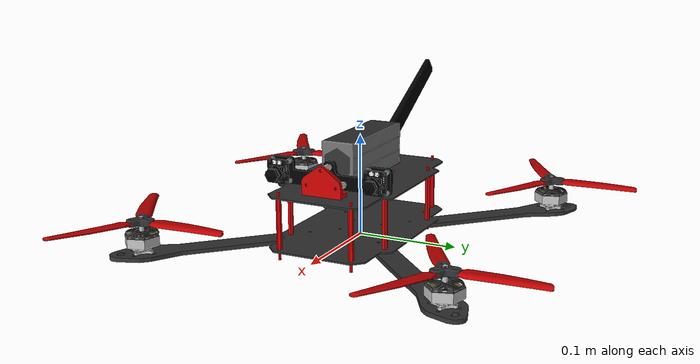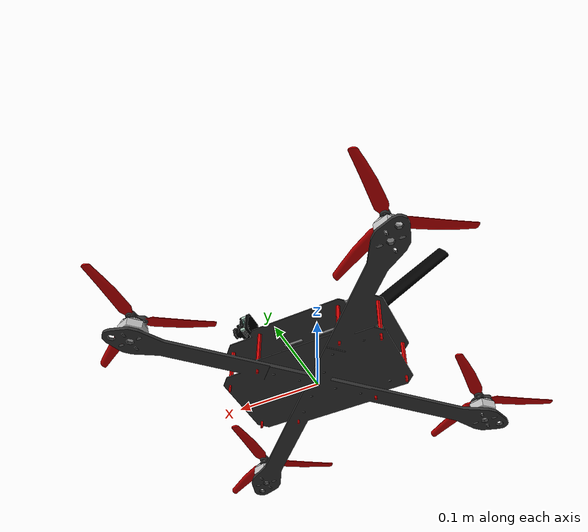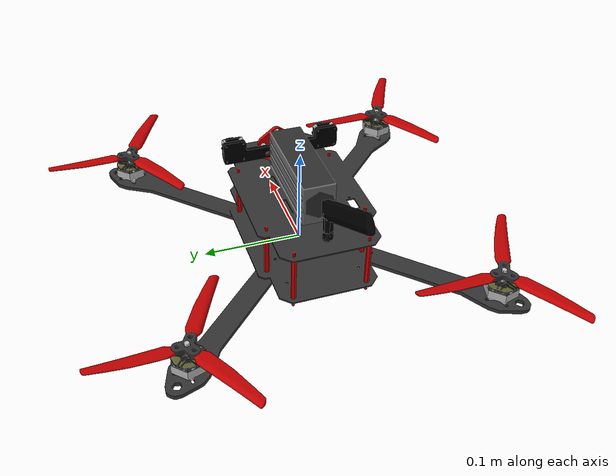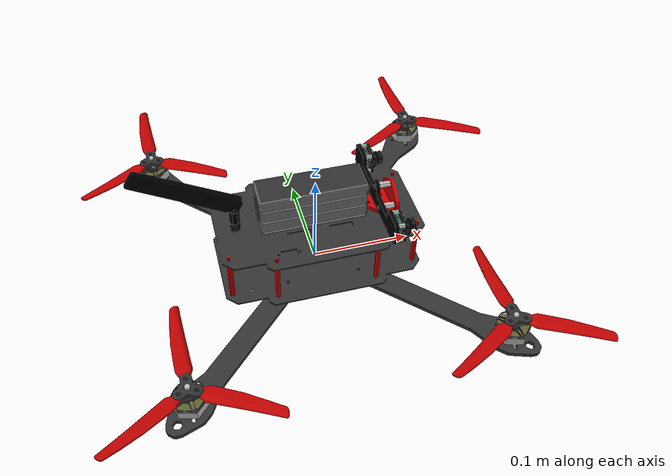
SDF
<?xml version='1.0'?>
<sdf version='1.6'>
  <model name='fei_lrs_drone'>
    <link name='drone_body'>
      <inertial>
        <mass>1.165</mass>
        <inertia>
          <ixx>0.008</ixx>
          <ixy>0</ixy>
          <ixz>0</ixz>
          <iyy>0.015</iyy>
          <iyz>0</iyz>
          <izz>0.017</izz>
        </inertia>
        <pose frame=''>0 0 0 0 -0 0</pose>
      </inertial>
      <pose frame=''>0 0 0 0 -0 0</pose>
      <self_collide>0</self_collide>
      <enable_wind>0</enable_wind>
      <kinematic>0</kinematic>
      <gravity>1</gravity>
      <visual name='visual'>
        <pose frame=''>0 0 0 0 -0 1.5708</pose>
        <geometry>
          <mesh>
            <uri>model://fei_lrs_drone/drone_lowres.dae</uri>
            <scale>1 1 1</scale>
          </mesh>
        </geometry>
        <transparency>0</transparency>
        <cast_shadows>1</cast_shadows>
        <material>
          <shader type='pixel'>
            <normal_map>__default__</normal_map>
          </shader>
          <emissive>0 0 0 1</emissive>
        </material>
      </visual>
      <collision name='collision'>
        <laser_retro>0</laser_retro>
        <max_contacts>10</max_contacts>
        <pose frame=''>0 0 0 0 -0 1.5708</pose>
        <geometry>
          <mesh>
            <uri>model://fei_lrs_drone/drone_lowres.dae</uri>
            <scale>1 1 1</scale>
          </mesh>
        </geometry>
        <surface>
          <friction>
            <ode>
              <mu>1000</mu>
              <mu2>1000</mu2>
              <fdir1>0 0 0</fdir1>
              <slip1>0</slip1>
              <slip2>0</slip2>
            </ode>
            <torsional>
              <coefficient>1</coefficient>
              <patch_radius>0</patch_radius>
              <surface_radius>0</surface_radius>
              <use_patch_radius>1</use_patch_radius>
              <ode>
                <slip>0</slip>
              </ode>
            </torsional>
          </friction>
          <bounce>
            <restitution_coefficient>0</restitution_coefficient>
            <threshold>1e+06</threshold>
          </bounce>
          <contact>
            <collide_without_contact>0</collide_without_contact>
            <collide_without_contact_bitmask>1</collide_without_contact_bitmask>
            <collide_bitmask>1</collide_bitmask>
            <ode>
              <soft_cfm>0</soft_cfm>
              <soft_erp>0.2</soft_erp>
              <kp>1e+13</kp>
              <kd>1</kd>
              <max_vel>100.0</max_vel>
              <min_depth>0.001</min_depth>
            </ode>
            <bullet>
              <split_impulse>1</split_impulse>
              <split_impulse_penetration_threshold>-0.01</split_impulse_penetration_threshold>
              <soft_cfm>0</soft_cfm>
              <soft_erp>0.2</soft_erp>
              <kp>1e+13</kp>
              <kd>1</kd>
            </bullet>
          </contact>
        </surface>
      </collision>
    </link>
    <link name='fei_lrs_drone/ground_truth/odometry_sensorgt_link'>
      <pose>0 0 0 0 -0 0</pose>
      <inertial>
        <pose>0 0 0 0 -0 0</pose>
        <mass>0.01</mass>
        <inertia>
          <ixx>0.0001</ixx>
          <ixy>0</ixy>
          <ixz>0</ixz>
          <iyy>0.0002</iyy>
          <iyz>0</iyz>
          <izz>0.0002</izz>
        </inertia>
      </inertial>
    </link>
    <joint name='fei_lrs_drone/ground_truth/odometry_sensorgt_joint' type='revolute'>
      <child>fei_lrs_drone/ground_truth/odometry_sensorgt_link</child>
      <parent>drone_body</parent>
      <axis>
        <xyz>0 0 1</xyz>
        <limit>
          <lower>0</lower>
          <upper>0</upper>
          <effort>0</effort>
          <velocity>0</velocity>
        </limit>
        <dynamics>
          <damping>1.0</damping>
        </dynamics>
        <use_parent_model_frame>1</use_parent_model_frame>
      </axis>
      <physics>
        <ode>
          <implicit_spring_damper>1</implicit_spring_damper>
        </ode>
      </physics>
    </joint>
    <link name='fei_lrs_drone/imu_link'>
      <inertial>
        <pose>0 0 0 0 0 0</pose>
        <mass>0.01</mass>
        <inertia>
          <ixx>0.00001</ixx>
          <ixy>0</ixy>
          <ixz>0</ixz>
          <iyy>0.00002</iyy>
          <iyz>0</iyz>
          <izz>0.00002</izz>
        </inertia>
      </inertial>
      <sensor name="imu_sensor" type="imu">
        <pose>0 0 0 3.141593 0 0</pose>
        <always_on>1</always_on>
        <update_rate>1000.0</update_rate>
      </sensor>
    </link>
    <joint name='fei_lrs_drone/imu_joint' type='revolute'>
      <child>fei_lrs_drone/imu_link</child>
      <parent>drone_body</parent>
      <axis>
        <xyz>0 0 1</xyz>
        <limit>
          <lower>0</lower>
          <upper>0</upper>
          <effort>0</effort>
          <velocity>0</velocity>
        </limit>
        <dynamics>
          <damping>1.0</damping>
        </dynamics>
        <use_parent_model_frame>1</use_parent_model_frame>
      </axis>
      <physics>
        <ode>
          <implicit_spring_damper>1</implicit_spring_damper>
        </ode>
      </physics>
    </joint>
    <link name='fei_lrs_drone/stereo_cam_link'>
      <gravity>0</gravity>
      <pose>0.085 0.05 0.0735 0 0 0</pose>
      <inertial>
        <pose>0 0 0 0 0 0</pose>
        <mass>0.01</mass>
        <inertia>
          <ixx>0.00001</ixx>
          <ixy>0</ixy>
          <ixz>0</ixz>
          <iyy>0.00002</iyy>
          <iyz>0</iyz>
          <izz>0.00002</izz>
        </inertia>
      </inertial>
      <sensor type="multicamera" name="stereo_camera">
        <update_rate>30.0</update_rate>
        <camera name="left">
          <horizontal_fov>1.3962634</horizontal_fov>
          <image>
            <width>800</width>
            <height>800</height>
            <format>R8G8B8</format>
          </image>
          <clip>
            <near>0.02</near>
            <far>300</far>
          </clip>
          <noise>
            <type>gaussian</type>
            <mean>0.0</mean>
            <stddev>0.007</stddev>
          </noise>
        </camera>
        <camera name="right">
          <pose>0 -0.1 0 0 0 0</pose>
          <horizontal_fov>1.3962634</horizontal_fov>
          <image>
            <width>800</width>
            <height>800</height>
            <format>R8G8B8</format>
          </image>
          <clip>
            <near>0.02</near>
            <far>300</far>
          </clip>
          <noise>
            <type>gaussian</type>
            <mean>0.0</mean>
            <stddev>0.007</stddev>
          </noise>
        </camera>
        <plugin name="stereo_camera_controller" filename="libgazebo_ros_multicamera.so">
          <alwaysOn>true</alwaysOn>
          <updateRate>0.0</updateRate>
          <cameraName>fei_lrs_drone/stereo_camera</cameraName>
          <imageTopicName>image_raw</imageTopicName>
          <cameraInfoTopicName>camera_info</cameraInfoTopicName>
          <frameName>left_camera_optical_frame</frameName>
          <hackBaseline>0.07</hackBaseline>
          <distortionK1>0.0</distortionK1>
          <distortionK2>0.0</distortionK2>
          <distortionK3>0.0</distortionK3>
          <distortionT1>0.0</distortionT1>
          <distortionT2>0.0</distortionT2>
        </plugin>
      </sensor>
    </link>
    <joint name='JOINT_stereo_cam' type='fixed'>
      <parent>drone_body</parent>
      <child>fei_lrs_drone/stereo_cam_link</child>
    </joint>
    <link name='prop_0'>
      <inertial>
        <mass>0.008</mass>
        <inertia>
          <ixx>9.75e-06</ixx>
          <ixy>0</ixy>
          <ixz>0</ixz>
          <iyy>0.000166704</iyy>
          <iyz>0</iyz>
          <izz>0.000167604</izz>
        </inertia>
      </inertial>
      <pose frame=''>0.149345 -0.149071 0.035 0 -0 0</pose>
      <visual name='visual'>
        <pose frame=''>0 0 0 0 -0 0</pose>
        <geometry>
          <mesh>
            <uri>model://fei_lrs_drone/propeller.dae</uri>
            <scale>1 1 1</scale>
          </mesh>
        </geometry>
        <transparency>0</transparency>
        <cast_shadows>1</cast_shadows>
        <material>
          <shader type='pixel'>
            <normal_map>__default__</normal_map>
          </shader>
          <emissive>0 0 0 1</emissive>
        </material>
      </visual>
    </link>
    <link name='prop_1'>
      <inertial>
        <mass>0.008</mass>
        <inertia>
          <ixx>9.75e-06</ixx>
          <ixy>0</ixy>
          <ixz>0</ixz>
          <iyy>0.000166704</iyy>
          <iyz>0</iyz>
          <izz>0.000167604</izz>
        </inertia>
      </inertial>
      <pose frame=''>-0.149345 0.149071 0.035 0 -0 0</pose>
      <visual name='visual'>
        <pose frame=''>0 0 0 0 -0 0</pose>
        <geometry>
          <mesh>
            <uri>model://fei_lrs_drone/propeller.dae</uri>
            <scale>1 1 1</scale>
          </mesh>
        </geometry>
        <transparency>0</transparency>
        <cast_shadows>1</cast_shadows>
        <material>
          <shader type='pixel'>
            <normal_map>__default__</normal_map>
          </shader>
          <emissive>0 0 0 1</emissive>
        </material>
      </visual>
    </link>
    <link name='prop_2'>
      <inertial>
        <mass>0.008</mass>
        <inertia>
          <ixx>9.75e-06</ixx>
          <ixy>0</ixy>
          <ixz>0</ixz>
          <iyy>0.000166704</iyy>
          <iyz>0</iyz>
          <izz>0.000167604</izz>
        </inertia>
      </inertial>
      <pose frame=''>0.149345 0.149071 0.035 0 -0 0</pose>
      <visual name='visual'>
        <pose frame=''>0 0 0 0 -0 0</pose>
        <geometry>
          <mesh>
            <uri>model://fei_lrs_drone/propeller.dae</uri>
            <scale>1 1 1</scale>
          </mesh>
        </geometry>
        <transparency>0</transparency>
        <cast_shadows>1</cast_shadows>
        <material>
          <shader type='pixel'>
            <normal_map>__default__</normal_map>
          </shader>
          <emissive>0 0 0 1</emissive>
        </material>
      </visual>
    </link>
    <link name='prop_3'>
      <inertial>
        <mass>0.008</mass>
        <inertia>
          <ixx>9.75e-06</ixx>
          <ixy>0</ixy>
          <ixz>0</ixz>
          <iyy>0.000166704</iyy>
          <iyz>0</iyz>
          <izz>0.000167604</izz>
        </inertia>
      </inertial>
      <pose frame=''>-0.149345 -0.149071 0.035 0 -0 0</pose>
      <visual name='visual_0'>
        <pose frame=''>0 0 0 0 -0 0</pose>
        <geometry>
          <mesh>
            <uri>model://fei_lrs_drone/propeller.dae</uri>
            <scale>1 1 1</scale>
          </mesh>
        </geometry>
        <transparency>0</transparency>
        <cast_shadows>1</cast_shadows>
        <material>
          <shader type='pixel'>
            <normal_map>__default__</normal_map>
          </shader>
          <emissive>0 0 0 1</emissive>
        </material>
      </visual>
    </link>
    <joint name='JOINT_prop_0' type='revolute'>
      <parent>drone_body</parent>
      <child>prop_0</child>
      <pose frame=''>0 0 0 0 -0 0</pose>
      <axis>
        <xyz>0 0 1</xyz>
        <use_parent_model_frame>0</use_parent_model_frame>
        <limit>
          <lower>-1.79769e+308</lower>
          <upper>1.79769e+308</upper>
          <effort>-1</effort>
          <velocity>-1</velocity>
        </limit>
        <dynamics>
          <spring_reference>0</spring_reference>
          <spring_stiffness>0</spring_stiffness>
          <damping>0.004</damping>
        </dynamics>
      </axis>
      <physics>
        <ode>
          <limit>
            <cfm>0</cfm>
            <erp>0.2</erp>
          </limit>
          <suspension>
            <cfm>0</cfm>
            <erp>0.2</erp>
          </suspension>
        </ode>
      </physics>
    </joint>
    <joint name='JOINT_prop_1' type='revolute'>
      <parent>drone_body</parent>
      <child>prop_1</child>
      <pose frame=''>0 0 0 0 -0 0</pose>
      <axis>
        <xyz>0 0 1</xyz>
        <use_parent_model_frame>0</use_parent_model_frame>
        <limit>
          <lower>-1.79769e+308</lower>
          <upper>1.79769e+308</upper>
          <effort>-1</effort>
          <velocity>-1</velocity>
        </limit>
        <dynamics>
          <spring_reference>0</spring_reference>
          <spring_stiffness>0</spring_stiffness>
          <damping>0.004</damping>
        </dynamics>
      </axis>
      <physics>
        <ode>
          <limit>
            <cfm>0</cfm>
            <erp>0.2</erp>
          </limit>
          <suspension>
            <cfm>0</cfm>
            <erp>0.2</erp>
          </suspension>
        </ode>
      </physics>
    </joint>
    <joint name='JOINT_prop_2' type='revolute'>
      <parent>drone_body</parent>
      <child>prop_2</child>
      <pose frame=''>0 0 0 0 -0 0</pose>
      <axis>
        <xyz>0 0 1</xyz>
        <use_parent_model_frame>0</use_parent_model_frame>
        <limit>
          <lower>-1.79769e+308</lower>
          <upper>1.79769e+308</upper>
          <effort>-1</effort>
          <velocity>-1</velocity>
        </limit>
        <dynamics>
          <spring_reference>0</spring_reference>
          <spring_stiffness>0</spring_stiffness>
          <damping>0.004</damping>
        </dynamics>
      </axis>
      <physics>
        <ode>
          <limit>
            <cfm>0</cfm>
            <erp>0.2</erp>
          </limit>
          <suspension>
            <cfm>0</cfm>
            <erp>0.2</erp>
          </suspension>
        </ode>
      </physics>
    </joint>
    <joint name='JOINT_prop_3' type='revolute'>
      <parent>drone_body</parent>
      <child>prop_3</child>
      <pose frame=''>0 0 0 0 -0 0</pose>
      <axis>
        <xyz>0 0 1</xyz>
        <use_parent_model_frame>0</use_parent_model_frame>
        <limit>
          <lower>-1.79769e+308</lower>
          <upper>1.79769e+308</upper>
          <effort>-1</effort>
          <velocity>-1</velocity>
        </limit>
        <dynamics>
          <spring_reference>0</spring_reference>
          <spring_stiffness>0</spring_stiffness>
          <damping>0.004</damping>
        </dynamics>
      </axis>
      <physics>
        <ode>
          <limit>
            <cfm>0</cfm>
            <erp>0.2</erp>
          </limit>
          <suspension>
            <cfm>0</cfm>
            <erp>0.2</erp>
          </suspension>
        </ode>
      </physics>
    </joint>
    <static>0</static>

    <!-- plugins -->
    <plugin name="prop_0_blade_1" filename="libLiftDragPlugin.so">
      <a0>0.3</a0>
      <alpha_stall>1.4</alpha_stall>
      <cla>4.2500</cla>
      <cda>0.10</cda>
      <cma>0.00</cma>
      <cla_stall>-0.025</cla_stall>
      <cda_stall>0.0</cda_stall>
      <cma_stall>0.0</cma_stall>
      <area>0.002</area>
      <air_density>1.2041</air_density>
      <cp>0.084 0 0</cp>
      <forward>0 1 0</forward>
      <upward>0 0 1</upward>
      <link_name>fei_lrs_drone::prop_0</link_name>
    </plugin>
    <plugin name="prop_0_blade_2" filename="libLiftDragPlugin.so">
      <a0>0.3</a0>
      <alpha_stall>1.4</alpha_stall>
      <cla>4.2500</cla>
      <cda>0.10</cda>
      <cma>0.00</cma>
      <cla_stall>-0.025</cla_stall>
      <cda_stall>0.0</cda_stall>
      <cma_stall>0.0</cma_stall>
      <area>0.002</area>
      <air_density>1.2041</air_density>
      <cp>-0.084 0 0</cp>
      <forward>0 -1 0</forward>
      <upward>0 0 1</upward>
      <link_name>fei_lrs_drone::prop_0</link_name>
    </plugin>

    <plugin name="prop_1_blade_1" filename="libLiftDragPlugin.so">
      <a0>0.3</a0>
      <alpha_stall>1.4</alpha_stall>
      <cla>4.2500</cla>
      <cda>0.10</cda>
      <cma>0.00</cma>
      <cla_stall>-0.025</cla_stall>
      <cda_stall>0.0</cda_stall>
      <cma_stall>0.0</cma_stall>
      <area>0.002</area>
      <air_density>1.2041</air_density>
      <cp>0.084 0 0</cp>
      <forward>0 1 0</forward>
      <upward>0 0 1</upward>
      <link_name>fei_lrs_drone::prop_1</link_name>
    </plugin>
    <plugin name="prop_1_blade_2" filename="libLiftDragPlugin.so">
      <a0>0.3</a0>
      <alpha_stall>1.4</alpha_stall>
      <cla>4.2500</cla>
      <cda>0.10</cda>
      <cma>0.00</cma>
      <cla_stall>-0.025</cla_stall>
      <cda_stall>0.0</cda_stall>
      <cma_stall>0.0</cma_stall>
      <area>0.002</area>
      <air_density>1.2041</air_density>
      <cp>-0.084 0 0</cp>
      <forward>0 -1 0</forward>
      <upward>0 0 1</upward>
      <link_name>fei_lrs_drone::prop_1</link_name>
    </plugin>

    <plugin name="prop_2_blade_1" filename="libLiftDragPlugin.so">
      <a0>0.3</a0>
      <alpha_stall>1.4</alpha_stall>
      <cla>4.2500</cla>
      <cda>0.10</cda>
      <cma>0.00</cma>
      <cla_stall>-0.025</cla_stall>
      <cda_stall>0.0</cda_stall>
      <cma_stall>0.0</cma_stall>
      <area>0.002</area>
      <air_density>1.2041</air_density>
      <cp>0.084 0 0</cp>
      <forward>0 -1 0</forward>
      <upward>0 0 1</upward>
      <link_name>fei_lrs_drone::prop_2</link_name>
    </plugin>
    <plugin name="prop_2_blade_2" filename="libLiftDragPlugin.so">
      <a0>0.3</a0>
      <alpha_stall>1.4</alpha_stall>
      <cla>4.2500</cla>
      <cda>0.10</cda>
      <cma>0.00</cma>
      <cla_stall>-0.025</cla_stall>
      <cda_stall>0.0</cda_stall>
      <cma_stall>0.0</cma_stall>
      <area>0.002</area>
      <air_density>1.2041</air_density>
      <cp>-0.084 0 0</cp>
      <forward>0 1 0</forward>
      <upward>0 0 1</upward>
      <link_name>fei_lrs_drone::prop_2</link_name>
    </plugin>

    <plugin name="prop_3_blade_1" filename="libLiftDragPlugin.so">
      <a0>0.3</a0>
      <alpha_stall>1.4</alpha_stall>
      <cla>4.2500</cla>
      <cda>0.10</cda>
      <cma>0.00</cma>
      <cla_stall>-0.025</cla_stall>
      <cda_stall>0.0</cda_stall>
      <cma_stall>0.0</cma_stall>
      <area>0.002</area>
      <air_density>1.2041</air_density>
      <cp>0.084 0 0</cp>
      <forward>0 -1 0</forward>
      <upward>0 0 1</upward>
      <link_name>fei_lrs_drone::prop_3</link_name>
    </plugin>
    <plugin name="prop_3_blade_2" filename="libLiftDragPlugin.so">
      <a0>0.3</a0>
      <alpha_stall>1.4</alpha_stall>
      <cla>4.2500</cla>
      <cda>0.10</cda>
      <cma>0.00</cma>
      <cla_stall>-0.025</cla_stall>
      <cda_stall>0.0</cda_stall>
      <cma_stall>0.0</cma_stall>
      <area>0.002</area>
      <air_density>1.2041</air_density>
      <cp>-0.084 0 0</cp>
      <forward>0 1 0</forward>
      <upward>0 0 1</upward>
      <link_name>fei_lrs_drone::prop_3</link_name>
    </plugin>

    <plugin name="arducopter_plugin" filename="libArduPilotPlugin.so">
      <fdm_addr>127.0.0.1</fdm_addr>
      <fdm_port_in>9002</fdm_port_in>
      <fdm_port_out>9003</fdm_port_out>
      <!--
          Require by APM :
          Only change model and gazebo from XYZ to XY-Z coordinates
      -->
      <modelXYZToAirplaneXForwardZDown>0 0 0 3.141593 0 0</modelXYZToAirplaneXForwardZDown>
      <gazeboXYZToNED>0 0 0 3.141593 0 0</gazeboXYZToNED>
      <imuName>fei_lrs_drone::fei_lrs_drone/imu_link::imu_sensor</imuName>
      <connectionTimeoutMaxCount>5</connectionTimeoutMaxCount>
      <control channel="0">
      <!--
          incoming control command [0, 1]
          so offset it by 0 to get [0, 1]
          and divide max target by 1.
          offset = 0
          multiplier = 838 max rpm / 1 = 838
        -->
        <type>VELOCITY</type>
        <offset>0</offset>
        <p_gain>0.20</p_gain>
        <i_gain>0</i_gain>
        <d_gain>0</d_gain>
        <i_max>0</i_max>
        <i_min>0</i_min>
        <cmd_max>2.5</cmd_max>
        <cmd_min>-2.5</cmd_min>
        <jointName>fei_lrs_drone::JOINT_prop_0</jointName>
        <multiplier>838</multiplier>
        <controlVelocitySlowdownSim>1</controlVelocitySlowdownSim>
      </control>
      <control channel="1">
        <type>VELOCITY</type>
        <offset>0</offset>
        <p_gain>0.20</p_gain>
        <i_gain>0</i_gain>
        <d_gain>0</d_gain>
        <i_max>0</i_max>
        <i_min>0</i_min>
        <cmd_max>2.5</cmd_max>
        <cmd_min>-2.5</cmd_min>
        <jointName>fei_lrs_drone::JOINT_prop_1</jointName>
        <multiplier>838</multiplier>
        <controlVelocitySlowdownSim>1</controlVelocitySlowdownSim>
      </control>
      <control channel="2">
        <type>VELOCITY</type>
        <offset>0</offset>
        <p_gain>0.20</p_gain>
        <i_gain>0</i_gain>
        <d_gain>0</d_gain>
        <i_max>0</i_max>
        <i_min>0</i_min>
        <cmd_max>2.5</cmd_max>
        <cmd_min>-2.5</cmd_min>
        <jointName>fei_lrs_drone::JOINT_prop_2</jointName>
        <multiplier>-838</multiplier>
        <controlVelocitySlowdownSim>1</controlVelocitySlowdownSim>
      </control>
      <control channel="3">
        <type>VELOCITY</type>
        <offset>0</offset>
        <p_gain>0.20</p_gain>
        <i_gain>0</i_gain>
        <d_gain>0</d_gain>
        <i_max>0</i_max>
        <i_min>0</i_min>
        <cmd_max>2.5</cmd_max>
        <cmd_min>-2.5</cmd_min>
        <jointName>fei_lrs_drone::JOINT_prop_3</jointName>
        <multiplier>-838</multiplier>
        <controlVelocitySlowdownSim>1</controlVelocitySlowdownSim>
      </control>
    </plugin>

  </model>
</sdf>
